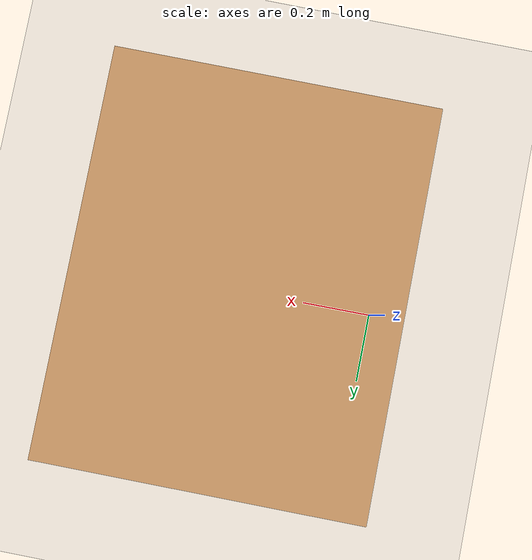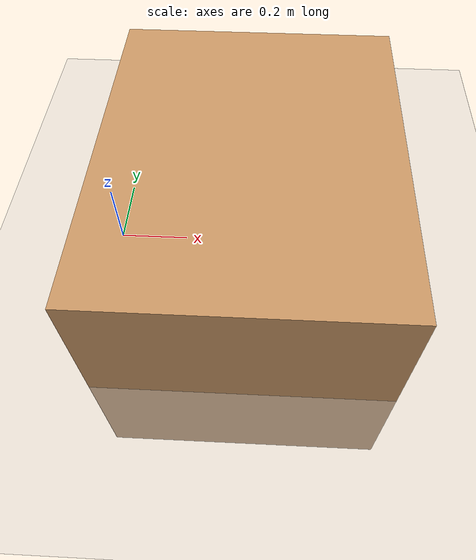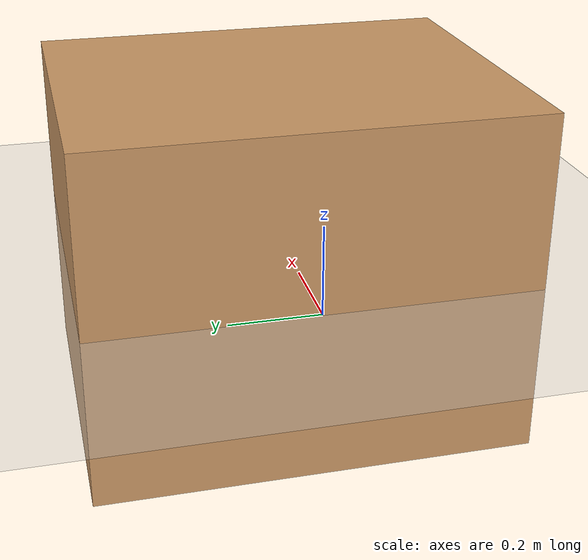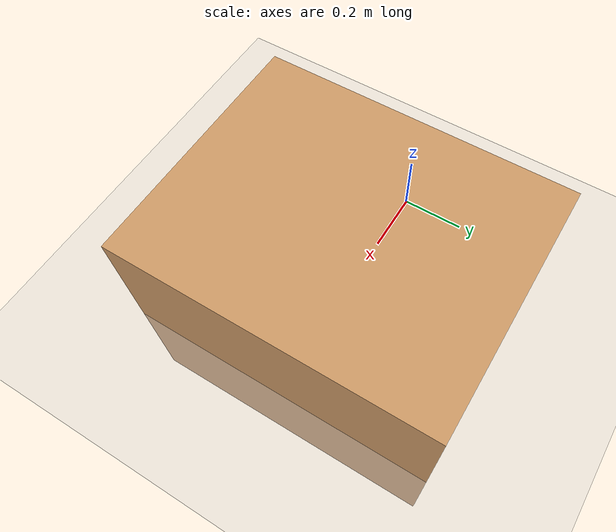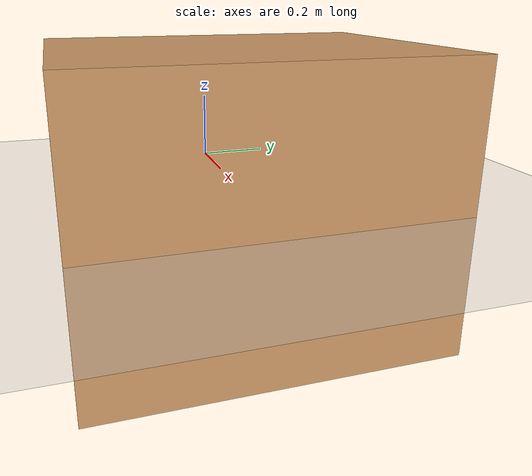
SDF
<?xml version="1.0" ?>
<sdf version="1.6">
  <world name="default">
    <!-- Ánh sáng và Mặt đất -->
    <include><uri>model://sun</uri></include>
    <include><uri>model://ground_plane</uri></include>

    <!-- Bàn thao tác -->
    <model name="table">
      <static>true</static>
      <pose>0.4 0 0 0 0 0</pose>
      <link name="link">
        <visual name="visual">
          <geometry><box><size>0.8 1.0 0.8</size></box></geometry>
          <material><ambient>0.8 0.6 0.4 1</ambient></material>
        </visual>
        <collision name="collision">
          <geometry><box><size>0.8 1.0 0.8</size></box></geometry>
        </collision>
      </link>
    </model>

    <!-- World Camera (Nhận diện vật thể) -->
    <model name="overhead_camera">
      <static>true</static>
      <pose>0.4 0 2.0 0 1.5708 0</pose> <!-- Treo cao 2m, cúi xuống 90 độ -->
      <link name="link">
        <sensor name="camera1" type="camera">
          <camera>
            <horizontal_fov>1.047</horizontal_fov>
            <image><width>640</width><height>480</height></image>
          </camera>
          <plugin name="camera_controller" filename="libgazebo_ros_camera.so">
            <ros><remapping>~/image_raw:=/overhead_camera/image_raw</remapping></ros>
            <camera_name>overhead_camera</camera_name>
            <frame_name>camera_link</frame_name>
          </plugin>
        </sensor>
      </link>
    </model>
  </world>
</sdf>
